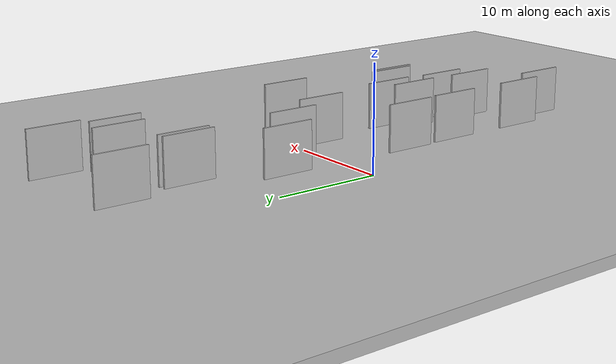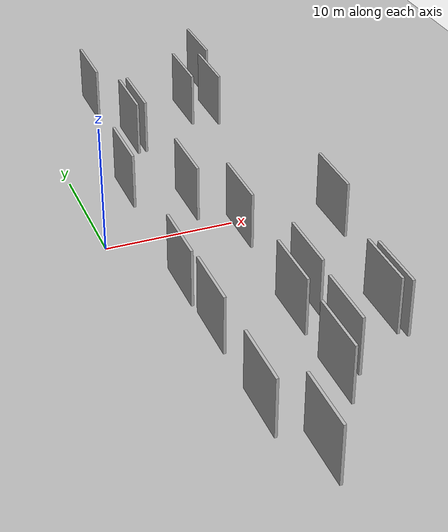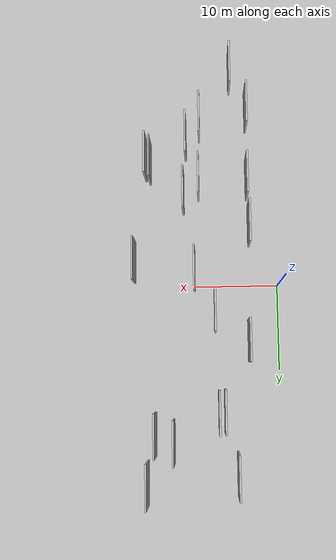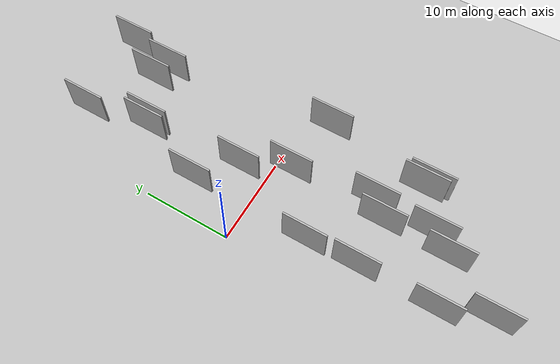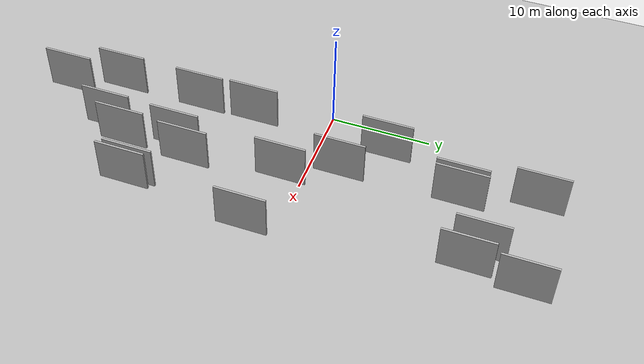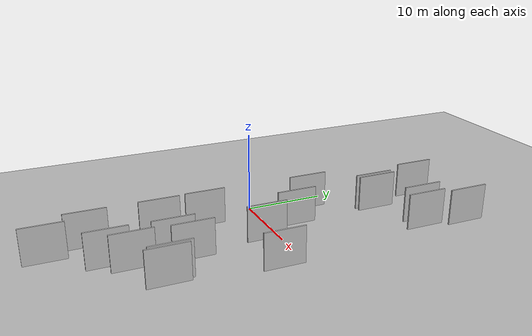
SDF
<?xml version="1.0" encoding="utf-8"?>

<sdf version="1.6">

   <world name="default">

      <gui fullscreen="0">

         <camera name="user_camera">

            <pose>-15 0 4.57585 0 0 0</pose>

            <view_controller>orbit</view_controller>

         </camera>

      </gui>

      <scene>

         <sky>

           <clouds>

             <speed>12</speed>

           </clouds>

         </sky>

         <ambient>0.4 0.4 0.4 1</ambient>

         <background>0.7 0.7 0.7 1</background>

         <shadows>1</shadows>

      </scene>

      <gravity>0 0 -9.8066</gravity>

      <magnetic_field>6e-06 2.3e-05 -4.2e-05</magnetic_field>

      <physics default="0" name="default_physics" type="ode">

         <ode>

            <solver>

               <type>quick</type>

               <iters>10</iters>

               <sor>1.0</sor>

               <use_dynamic_moi_rescaling>0</use_dynamic_moi_rescaling>

            </solver>

            <constraints>

               <cfm>0</cfm>

               <erp>0.2</erp>

               <contact_max_correcting_vel>100</contact_max_correcting_vel>

               <contact_surface_layer>0.001</contact_surface_layer>

            </constraints>

         </ode>

         <max_step_size>0.004</max_step_size>

         <real_time_factor>1</real_time_factor>

         <real_time_update_rate>250</real_time_update_rate>

      </physics>

      <light name="sun" type="directional">

         <cast_shadows>1</cast_shadows>

         <pose>0 0 10 0 0 0</pose>

         <diffuse>0.8 0.8 0.8 1</diffuse>

         <specular>0.2 0.2 0.2 1</specular>

         <attenuation>

            <range>1000</range>

            <constant>0.9</constant>

            <linear>0.01</linear>

            <quadratic>0.001</quadratic>

         </attenuation>

         <direction>-0.5 0.1 -0.9</direction>

      </light>

      <include>

         <name>ground_plane_1</name>

         <uri>model://HANNAS_ground_plane</uri>

         <pose>0 0 0  0 0 0</pose>

      </include>

      <include>

         <name>ground_plane_2</name>

         <uri>model://HANNAS_ground_plane</uri>

         <pose>100 0 0  0 0 0</pose>

      </include>

      <model name="HANNAS_wall_1">

         <static>1</static>

         <pose frame="">15.4256 22.4297 0.0 0.000000 0.000000 1.570796</pose>

         <link name="link">

            <pose frame="">0 0 2.50 0 0 0</pose>

            <collision name="collision">

               <geometry>

                  <box>

                     <size>5.00 0.2 5.00</size>

                  </box>

               </geometry>

               <max_contacts>10</max_contacts>

               <surface>

                  <contact>

                     <ode/>

                  </contact>

                  <bounce/>

                  <friction>

                     <torsional>

                        <ode/>

                     </torsional>

                     <ode/>

                  </friction>

               </surface>

            </collision>

            <visual name="visual">

               <cast_shadows>0</cast_shadows>

               <geometry>

                  <box>

                     <size>5.00 0.2 5.00</size>

                  </box>

               </geometry>

               <material>

                  <script>

                     <uri>model://HANNAS_wall/materials/scripts</uri>

                     <uri>model://HANNAS_wall/materials/textures</uri>

                     <name>vrc/HANNAS_wall</name>

                  </script>

               </material>

            </visual>

            <self_collide>0</self_collide>

            <enable_wind>0</enable_wind>

            <kinematic>0</kinematic>

         </link>

      </model>

      <model name="HANNAS_wall_2">

         <static>1</static>

         <pose frame="">9.2713 -12.9443 0.0 0.000000 0.000000 1.570796</pose>

         <link name="link">

            <pose frame="">0 0 2.50 0 0 0</pose>

            <collision name="collision">

               <geometry>

                  <box>

                     <size>5.00 0.2 5.00</size>

                  </box>

               </geometry>

               <max_contacts>10</max_contacts>

               <surface>

                  <contact>

                     <ode/>

                  </contact>

                  <bounce/>

                  <friction>

                     <torsional>

                        <ode/>

                     </torsional>

                     <ode/>

                  </friction>

               </surface>

            </collision>

            <visual name="visual">

               <cast_shadows>0</cast_shadows>

               <geometry>

                  <box>

                     <size>5.00 0.2 5.00</size>

                  </box>

               </geometry>

               <material>

                  <script>

                     <uri>model://HANNAS_wall/materials/scripts</uri>

                     <uri>model://HANNAS_wall/materials/textures</uri>

                     <name>vrc/HANNAS_wall</name>

                  </script>

               </material>

            </visual>

            <self_collide>0</self_collide>

            <enable_wind>0</enable_wind>

            <kinematic>0</kinematic>

         </link>

      </model>

      <model name="HANNAS_wall_3">

         <static>1</static>

         <pose frame="">10.7534 -17.9845 0.0 0.000000 0.000000 1.570796</pose>

         <link name="link">

            <pose frame="">0 0 2.50 0 0 0</pose>

            <collision name="collision">

               <geometry>

                  <box>

                     <size>5.00 0.2 5.00</size>

                  </box>

               </geometry>

               <max_contacts>10</max_contacts>

               <surface>

                  <contact>

                     <ode/>

                  </contact>

                  <bounce/>

                  <friction>

                     <torsional>

                        <ode/>

                     </torsional>

                     <ode/>

                  </friction>

               </surface>

            </collision>

            <visual name="visual">

               <cast_shadows>0</cast_shadows>

               <geometry>

                  <box>

                     <size>5.00 0.2 5.00</size>

                  </box>

               </geometry>

               <material>

                  <script>

                     <uri>model://HANNAS_wall/materials/scripts</uri>

                     <uri>model://HANNAS_wall/materials/textures</uri>

                     <name>vrc/HANNAS_wall</name>

                  </script>

               </material>

            </visual>

            <self_collide>0</self_collide>

            <enable_wind>0</enable_wind>

            <kinematic>0</kinematic>

         </link>

      </model>

      <model name="HANNAS_wall_4">

         <static>1</static>

         <pose frame="">15.0358 -15.0093 0.0 0.000000 0.000000 1.570796</pose>

         <link name="link">

            <pose frame="">0 0 2.50 0 0 0</pose>

            <collision name="collision">

               <geometry>

                  <box>

                     <size>5.00 0.2 5.00</size>

                  </box>

               </geometry>

               <max_contacts>10</max_contacts>

               <surface>

                  <contact>

                     <ode/>

                  </contact>

                  <bounce/>

                  <friction>

                     <torsional>

                        <ode/>

                     </torsional>

                     <ode/>

                  </friction>

               </surface>

            </collision>

            <visual name="visual">

               <cast_shadows>0</cast_shadows>

               <geometry>

                  <box>

                     <size>5.00 0.2 5.00</size>

                  </box>

               </geometry>

               <material>

                  <script>

                     <uri>model://HANNAS_wall/materials/scripts</uri>

                     <uri>model://HANNAS_wall/materials/textures</uri>

                     <name>vrc/HANNAS_wall</name>

                  </script>

               </material>

            </visual>

            <self_collide>0</self_collide>

            <enable_wind>0</enable_wind>

            <kinematic>0</kinematic>

         </link>

      </model>

      <model name="HANNAS_wall_5">

         <static>1</static>

         <pose frame="">5.3535 -26.5035 0.0 0.000000 0.000000 1.570796</pose>

         <link name="link">

            <pose frame="">0 0 2.50 0 0 0</pose>

            <collision name="collision">

               <geometry>

                  <box>

                     <size>5.00 0.2 5.00</size>

                  </box>

               </geometry>

               <max_contacts>10</max_contacts>

               <surface>

                  <contact>

                     <ode/>

                  </contact>

                  <bounce/>

                  <friction>

                     <torsional>

                        <ode/>

                     </torsional>

                     <ode/>

                  </friction>

               </surface>

            </collision>

            <visual name="visual">

               <cast_shadows>0</cast_shadows>

               <geometry>

                  <box>

                     <size>5.00 0.2 5.00</size>

                  </box>

               </geometry>

               <material>

                  <script>

                     <uri>model://HANNAS_wall/materials/scripts</uri>

                     <uri>model://HANNAS_wall/materials/textures</uri>

                     <name>vrc/HANNAS_wall</name>

                  </script>

               </material>

            </visual>

            <self_collide>0</self_collide>

            <enable_wind>0</enable_wind>

            <kinematic>0</kinematic>

         </link>

      </model>

      <model name="HANNAS_wall_6">

         <static>1</static>

         <pose frame="">7.5140 3.0892 0.0 0.000000 0.000000 1.570796</pose>

         <link name="link">

            <pose frame="">0 0 2.50 0 0 0</pose>

            <collision name="collision">

               <geometry>

                  <box>

                     <size>5.00 0.2 5.00</size>

                  </box>

               </geometry>

               <max_contacts>10</max_contacts>

               <surface>

                  <contact>

                     <ode/>

                  </contact>

                  <bounce/>

                  <friction>

                     <torsional>

                        <ode/>

                     </torsional>

                     <ode/>

                  </friction>

               </surface>

            </collision>

            <visual name="visual">

               <cast_shadows>0</cast_shadows>

               <geometry>

                  <box>

                     <size>5.00 0.2 5.00</size>

                  </box>

               </geometry>

               <material>

                  <script>

                     <uri>model://HANNAS_wall/materials/scripts</uri>

                     <uri>model://HANNAS_wall/materials/textures</uri>

                     <name>vrc/HANNAS_wall</name>

                  </script>

               </material>

            </visual>

            <self_collide>0</self_collide>

            <enable_wind>0</enable_wind>

            <kinematic>0</kinematic>

         </link>

      </model>

      <model name="HANNAS_wall_7">

         <static>1</static>

         <pose frame="">14.5434 17.0379 0.0 0.000000 0.000000 1.570796</pose>

         <link name="link">

            <pose frame="">0 0 2.50 0 0 0</pose>

            <collision name="collision">

               <geometry>

                  <box>

                     <size>5.00 0.2 5.00</size>

                  </box>

               </geometry>

               <max_contacts>10</max_contacts>

               <surface>

                  <contact>

                     <ode/>

                  </contact>

                  <bounce/>

                  <friction>

                     <torsional>

                        <ode/>

                     </torsional>

                     <ode/>

                  </friction>

               </surface>

            </collision>

            <visual name="visual">

               <cast_shadows>0</cast_shadows>

               <geometry>

                  <box>

                     <size>5.00 0.2 5.00</size>

                  </box>

               </geometry>

               <material>

                  <script>

                     <uri>model://HANNAS_wall/materials/scripts</uri>

                     <uri>model://HANNAS_wall/materials/textures</uri>

                     <name>vrc/HANNAS_wall</name>

                  </script>

               </material>

            </visual>

            <self_collide>0</self_collide>

            <enable_wind>0</enable_wind>

            <kinematic>0</kinematic>

         </link>

      </model>

      <model name="HANNAS_wall_8">

         <static>1</static>

         <pose frame="">3.3417 -7.1957 0.0 0.000000 0.000000 1.570796</pose>

         <link name="link">

            <pose frame="">0 0 2.50 0 0 0</pose>

            <collision name="collision">

               <geometry>

                  <box>

                     <size>5.00 0.2 5.00</size>

                  </box>

               </geometry>

               <max_contacts>10</max_contacts>

               <surface>

                  <contact>

                     <ode/>

                  </contact>

                  <bounce/>

                  <friction>

                     <torsional>

                        <ode/>

                     </torsional>

                     <ode/>

                  </friction>

               </surface>

            </collision>

            <visual name="visual">

               <cast_shadows>0</cast_shadows>

               <geometry>

                  <box>

                     <size>5.00 0.2 5.00</size>

                  </box>

               </geometry>

               <material>

                  <script>

                     <uri>model://HANNAS_wall/materials/scripts</uri>

                     <uri>model://HANNAS_wall/materials/textures</uri>

                     <name>vrc/HANNAS_wall</name>

                  </script>

               </material>

            </visual>

            <self_collide>0</self_collide>

            <enable_wind>0</enable_wind>

            <kinematic>0</kinematic>

         </link>

      </model>

      <model name="HANNAS_wall_9">

         <static>1</static>

         <pose frame="">9.8862 -1.9011 0.0 0.000000 0.000000 1.570796</pose>

         <link name="link">

            <pose frame="">0 0 2.50 0 0 0</pose>

            <collision name="collision">

               <geometry>

                  <box>

                     <size>5.00 0.2 5.00</size>

                  </box>

               </geometry>

               <max_contacts>10</max_contacts>

               <surface>

                  <contact>

                     <ode/>

                  </contact>

                  <bounce/>

                  <friction>

                     <torsional>

                        <ode/>

                     </torsional>

                     <ode/>

                  </friction>

               </surface>

            </collision>

            <visual name="visual">

               <cast_shadows>0</cast_shadows>

               <geometry>

                  <box>

                     <size>5.00 0.2 5.00</size>

                  </box>

               </geometry>

               <material>

                  <script>

                     <uri>model://HANNAS_wall/materials/scripts</uri>

                     <uri>model://HANNAS_wall/materials/textures</uri>

                     <name>vrc/HANNAS_wall</name>

                  </script>

               </material>

            </visual>

            <self_collide>0</self_collide>

            <enable_wind>0</enable_wind>

            <kinematic>0</kinematic>

         </link>

      </model>

      <model name="HANNAS_wall_10">

         <static>1</static>

         <pose frame="">3.5840 6.5521 0.0 0.000000 0.000000 1.570796</pose>

         <link name="link">

            <pose frame="">0 0 2.50 0 0 0</pose>

            <collision name="collision">

               <geometry>

                  <box>

                     <size>5.00 0.2 5.00</size>

                  </box>

               </geometry>

               <max_contacts>10</max_contacts>

               <surface>

                  <contact>

                     <ode/>

                  </contact>

                  <bounce/>

                  <friction>

                     <torsional>

                        <ode/>

                     </torsional>

                     <ode/>

                  </friction>

               </surface>

            </collision>

            <visual name="visual">

               <cast_shadows>0</cast_shadows>

               <geometry>

                  <box>

                     <size>5.00 0.2 5.00</size>

                  </box>

               </geometry>

               <material>

                  <script>

                     <uri>model://HANNAS_wall/materials/scripts</uri>

                     <uri>model://HANNAS_wall/materials/textures</uri>

                     <name>vrc/HANNAS_wall</name>

                  </script>

               </material>

            </visual>

            <self_collide>0</self_collide>

            <enable_wind>0</enable_wind>

            <kinematic>0</kinematic>

         </link>

      </model>

      <model name="HANNAS_wall_11">

         <static>1</static>

         <pose frame="">11.0925 -11.2667 0.0 0.000000 0.000000 1.570796</pose>

         <link name="link">

            <pose frame="">0 0 2.50 0 0 0</pose>

            <collision name="collision">

               <geometry>

                  <box>

                     <size>5.00 0.2 5.00</size>

                  </box>

               </geometry>

               <max_contacts>10</max_contacts>

               <surface>

                  <contact>

                     <ode/>

                  </contact>

                  <bounce/>

                  <friction>

                     <torsional>

                        <ode/>

                     </torsional>

                     <ode/>

                  </friction>

               </surface>

            </collision>

            <visual name="visual">

               <cast_shadows>0</cast_shadows>

               <geometry>

                  <box>

                     <size>5.00 0.2 5.00</size>

                  </box>

               </geometry>

               <material>

                  <script>

                     <uri>model://HANNAS_wall/materials/scripts</uri>

                     <uri>model://HANNAS_wall/materials/textures</uri>

                     <name>vrc/HANNAS_wall</name>

                  </script>

               </material>

            </visual>

            <self_collide>0</self_collide>

            <enable_wind>0</enable_wind>

            <kinematic>0</kinematic>

         </link>

      </model>

      <model name="HANNAS_wall_12">

         <static>1</static>

         <pose frame="">9.0993 -20.3486 0.0 0.000000 0.000000 1.570796</pose>

         <link name="link">

            <pose frame="">0 0 2.50 0 0 0</pose>

            <collision name="collision">

               <geometry>

                  <box>

                     <size>5.00 0.2 5.00</size>

                  </box>

               </geometry>

               <max_contacts>10</max_contacts>

               <surface>

                  <contact>

                     <ode/>

                  </contact>

                  <bounce/>

                  <friction>

                     <torsional>

                        <ode/>

                     </torsional>

                     <ode/>

                  </friction>

               </surface>

            </collision>

            <visual name="visual">

               <cast_shadows>0</cast_shadows>

               <geometry>

                  <box>

                     <size>5.00 0.2 5.00</size>

                  </box>

               </geometry>

               <material>

                  <script>

                     <uri>model://HANNAS_wall/materials/scripts</uri>

                     <uri>model://HANNAS_wall/materials/textures</uri>

                     <name>vrc/HANNAS_wall</name>

                  </script>

               </material>

            </visual>

            <self_collide>0</self_collide>

            <enable_wind>0</enable_wind>

            <kinematic>0</kinematic>

         </link>

      </model>

      <model name="HANNAS_wall_13">

         <static>1</static>

         <pose frame="">7.1961 14.6370 0.0 0.000000 0.000000 1.570796</pose>

         <link name="link">

            <pose frame="">0 0 2.50 0 0 0</pose>

            <collision name="collision">

               <geometry>

                  <box>

                     <size>5.00 0.2 5.00</size>

                  </box>

               </geometry>

               <max_contacts>10</max_contacts>

               <surface>

                  <contact>

                     <ode/>

                  </contact>

                  <bounce/>

                  <friction>

                     <torsional>

                        <ode/>

                     </torsional>

                     <ode/>

                  </friction>

               </surface>

            </collision>

            <visual name="visual">

               <cast_shadows>0</cast_shadows>

               <geometry>

                  <box>

                     <size>5.00 0.2 5.00</size>

                  </box>

               </geometry>

               <material>

                  <script>

                     <uri>model://HANNAS_wall/materials/scripts</uri>

                     <uri>model://HANNAS_wall/materials/textures</uri>

                     <name>vrc/HANNAS_wall</name>

                  </script>

               </material>

            </visual>

            <self_collide>0</self_collide>

            <enable_wind>0</enable_wind>

            <kinematic>0</kinematic>

         </link>

      </model>

      <model name="HANNAS_wall_14">

         <static>1</static>

         <pose frame="">3.4942 -12.9080 0.0 0.000000 0.000000 1.570796</pose>

         <link name="link">

            <pose frame="">0 0 2.50 0 0 0</pose>

            <collision name="collision">

               <geometry>

                  <box>

                     <size>5.00 0.2 5.00</size>

                  </box>

               </geometry>

               <max_contacts>10</max_contacts>

               <surface>

                  <contact>

                     <ode/>

                  </contact>

                  <bounce/>

                  <friction>

                     <torsional>

                        <ode/>

                     </torsional>

                     <ode/>

                  </friction>

               </surface>

            </collision>

            <visual name="visual">

               <cast_shadows>0</cast_shadows>

               <geometry>

                  <box>

                     <size>5.00 0.2 5.00</size>

                  </box>

               </geometry>

               <material>

                  <script>

                     <uri>model://HANNAS_wall/materials/scripts</uri>

                     <uri>model://HANNAS_wall/materials/textures</uri>

                     <name>vrc/HANNAS_wall</name>

                  </script>

               </material>

            </visual>

            <self_collide>0</self_collide>

            <enable_wind>0</enable_wind>

            <kinematic>0</kinematic>

         </link>

      </model>

      <model name="HANNAS_wall_15">

         <static>1</static>

         <pose frame="">16.9478 -2.9710 0.0 0.000000 0.000000 1.570796</pose>

         <link name="link">

            <pose frame="">0 0 2.50 0 0 0</pose>

            <collision name="collision">

               <geometry>

                  <box>

                     <size>5.00 0.2 5.00</size>

                  </box>

               </geometry>

               <max_contacts>10</max_contacts>

               <surface>

                  <contact>

                     <ode/>

                  </contact>

                  <bounce/>

                  <friction>

                     <torsional>

                        <ode/>

                     </torsional>

                     <ode/>

                  </friction>

               </surface>

            </collision>

            <visual name="visual">

               <cast_shadows>0</cast_shadows>

               <geometry>

                  <box>

                     <size>5.00 0.2 5.00</size>

                  </box>

               </geometry>

               <material>

                  <script>

                     <uri>model://HANNAS_wall/materials/scripts</uri>

                     <uri>model://HANNAS_wall/materials/textures</uri>

                     <name>vrc/HANNAS_wall</name>

                  </script>

               </material>

            </visual>

            <self_collide>0</self_collide>

            <enable_wind>0</enable_wind>

            <kinematic>0</kinematic>

         </link>

      </model>

      <model name="HANNAS_wall_16">

         <static>1</static>

         <pose frame="">5.1390 21.6288 0.0 0.000000 0.000000 1.570796</pose>

         <link name="link">

            <pose frame="">0 0 2.50 0 0 0</pose>

            <collision name="collision">

               <geometry>

                  <box>

                     <size>5.00 0.2 5.00</size>

                  </box>

               </geometry>

               <max_contacts>10</max_contacts>

               <surface>

                  <contact>

                     <ode/>

                  </contact>

                  <bounce/>

                  <friction>

                     <torsional>

                        <ode/>

                     </torsional>

                     <ode/>

                  </friction>

               </surface>

            </collision>

            <visual name="visual">

               <cast_shadows>0</cast_shadows>

               <geometry>

                  <box>

                     <size>5.00 0.2 5.00</size>

                  </box>

               </geometry>

               <material>

                  <script>

                     <uri>model://HANNAS_wall/materials/scripts</uri>

                     <uri>model://HANNAS_wall/materials/textures</uri>

                     <name>vrc/HANNAS_wall</name>

                  </script>

               </material>

            </visual>

            <self_collide>0</self_collide>

            <enable_wind>0</enable_wind>

            <kinematic>0</kinematic>

         </link>

      </model>

      <model name="HANNAS_wall_17">

         <static>1</static>

         <pose frame="">3.4393 -21.5020 0.0 0.000000 0.000000 1.570796</pose>

         <link name="link">

            <pose frame="">0 0 2.50 0 0 0</pose>

            <collision name="collision">

               <geometry>

                  <box>

                     <size>5.00 0.2 5.00</size>

                  </box>

               </geometry>

               <max_contacts>10</max_contacts>

               <surface>

                  <contact>

                     <ode/>

                  </contact>

                  <bounce/>

                  <friction>

                     <torsional>

                        <ode/>

                     </torsional>

                     <ode/>

                  </friction>

               </surface>

            </collision>

            <visual name="visual">

               <cast_shadows>0</cast_shadows>

               <geometry>

                  <box>

                     <size>5.00 0.2 5.00</size>

                  </box>

               </geometry>

               <material>

                  <script>

                     <uri>model://HANNAS_wall/materials/scripts</uri>

                     <uri>model://HANNAS_wall/materials/textures</uri>

                     <name>vrc/HANNAS_wall</name>

                  </script>

               </material>

            </visual>

            <self_collide>0</self_collide>

            <enable_wind>0</enable_wind>

            <kinematic>0</kinematic>

         </link>

      </model>

      <model name="HANNAS_wall_18">

         <static>1</static>

         <pose frame="">6.5120 14.5418 0.0 0.000000 0.000000 1.570796</pose>

         <link name="link">

            <pose frame="">0 0 2.50 0 0 0</pose>

            <collision name="collision">

               <geometry>

                  <box>

                     <size>5.00 0.2 5.00</size>

                  </box>

               </geometry>

               <max_contacts>10</max_contacts>

               <surface>

                  <contact>

                     <ode/>

                  </contact>

                  <bounce/>

                  <friction>

                     <torsional>

                        <ode/>

                     </torsional>

                     <ode/>

                  </friction>

               </surface>

            </collision>

            <visual name="visual">

               <cast_shadows>0</cast_shadows>

               <geometry>

                  <box>

                     <size>5.00 0.2 5.00</size>

                  </box>

               </geometry>

               <material>

                  <script>

                     <uri>model://HANNAS_wall/materials/scripts</uri>

                     <uri>model://HANNAS_wall/materials/textures</uri>

                     <name>vrc/HANNAS_wall</name>

                  </script>

               </material>

            </visual>

            <self_collide>0</self_collide>

            <enable_wind>0</enable_wind>

            <kinematic>0</kinematic>

         </link>

      </model>

      <model name="HANNAS_wall_19">

         <static>1</static>

         <pose frame="">15.5763 -15.4885 0.0 0.000000 0.000000 1.570796</pose>

         <link name="link">

            <pose frame="">0 0 2.50 0 0 0</pose>

            <collision name="collision">

               <geometry>

                  <box>

                     <size>5.00 0.2 5.00</size>

                  </box>

               </geometry>

               <max_contacts>10</max_contacts>

               <surface>

                  <contact>

                     <ode/>

                  </contact>

                  <bounce/>

                  <friction>

                     <torsional>

                        <ode/>

                     </torsional>

                     <ode/>

                  </friction>

               </surface>

            </collision>

            <visual name="visual">

               <cast_shadows>0</cast_shadows>

               <geometry>

                  <box>

                     <size>5.00 0.2 5.00</size>

                  </box>

               </geometry>

               <material>

                  <script>

                     <uri>model://HANNAS_wall/materials/scripts</uri>

                     <uri>model://HANNAS_wall/materials/textures</uri>

                     <name>vrc/HANNAS_wall</name>

                  </script>

               </material>

            </visual>

            <self_collide>0</self_collide>

            <enable_wind>0</enable_wind>

            <kinematic>0</kinematic>

         </link>

      </model>

      <model name="HANNAS_wall_20">

         <static>1</static>

         <pose frame="">12.4262 17.8520 0.0 0.000000 0.000000 1.570796</pose>

         <link name="link">

            <pose frame="">0 0 2.50 0 0 0</pose>

            <collision name="collision">

               <geometry>

                  <box>

                     <size>5.00 0.2 5.00</size>

                  </box>

               </geometry>

               <max_contacts>10</max_contacts>

               <surface>

                  <contact>

                     <ode/>

                  </contact>

                  <bounce/>

                  <friction>

                     <torsional>

                        <ode/>

                     </torsional>

                     <ode/>

                  </friction>

               </surface>

            </collision>

            <visual name="visual">

               <cast_shadows>0</cast_shadows>

               <geometry>

                  <box>

                     <size>5.00 0.2 5.00</size>

                  </box>

               </geometry>

               <material>

                  <script>

                     <uri>model://HANNAS_wall/materials/scripts</uri>

                     <uri>model://HANNAS_wall/materials/textures</uri>

                     <name>vrc/HANNAS_wall</name>

                  </script>

               </material>

            </visual>

            <self_collide>0</self_collide>

            <enable_wind>0</enable_wind>

            <kinematic>0</kinematic>

         </link>

      </model>

   </world>

</sdf>

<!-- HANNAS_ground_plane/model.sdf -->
<sdf version="1.4">
<model name="HANNAS_ground_plane">
  <static>true</static>
    <link name="link">
      <collision name="collision">
        <geometry>
          <plane>
            <normal>0 0 1</normal>
            <size>1000 1000</size>
          </plane>
        </geometry>
        <surface>
          <friction>
            <ode>
              <mu>100</mu>
              <mu2>50</mu2>
            </ode>
          </friction>
        </surface>
      </collision>
      <visual name="visual">
        <cast_shadows>false</cast_shadows>
        <geometry>
          <plane>
            <normal>0 0 1</normal>
            <size>1000 1000</size>
          </plane>
        </geometry>
        <material>
          <script>
            <uri>model://HANNAS_ground_plane/materials/scripts/HANNAS_ground_plane.material</uri>
	    <uri>model://HANNAS_ground_plane/materials/textures</uri>
            <name>HANNASGroundPlane/Image</name>
          </script>
        </material>
      </visual>
    </link>
  </model>
</sdf>
